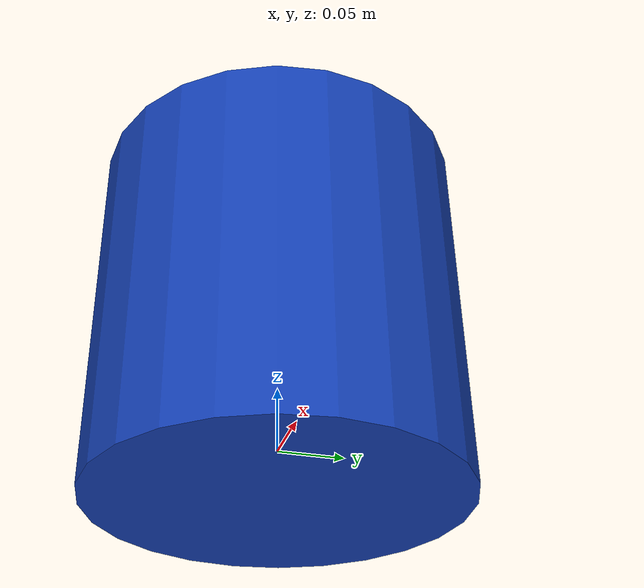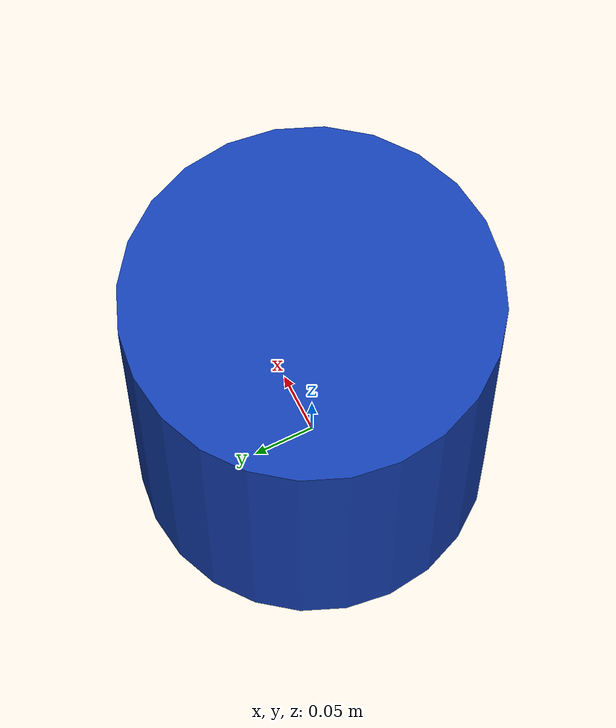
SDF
<?xml version="1.0"?>
<sdf version="1.9">
  <model name="large_cylinder">
    <static>true</static>
    <link name="body">
      <pose>0 0 0.1000 0 0 0</pose>
      <collision name="collision">
        <geometry>
          <cylinder><radius>0.1400</radius><length>0.2800</length></cylinder>
        </geometry>
      </collision>
      <visual name="visual">
        <geometry>
          <cylinder><radius>0.1400</radius><length>0.2800</length></cylinder>
        </geometry>
        <material>
          <diffuse>0.080 0.250 0.700 1</diffuse>
          <ambient>0.056 0.175 0.490 1</ambient>
        </material>
      </visual>
    </link>
  </model>
</sdf>
